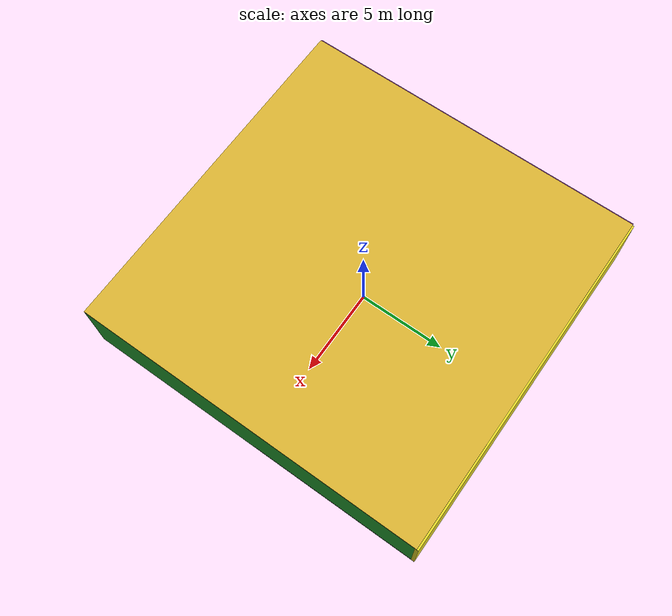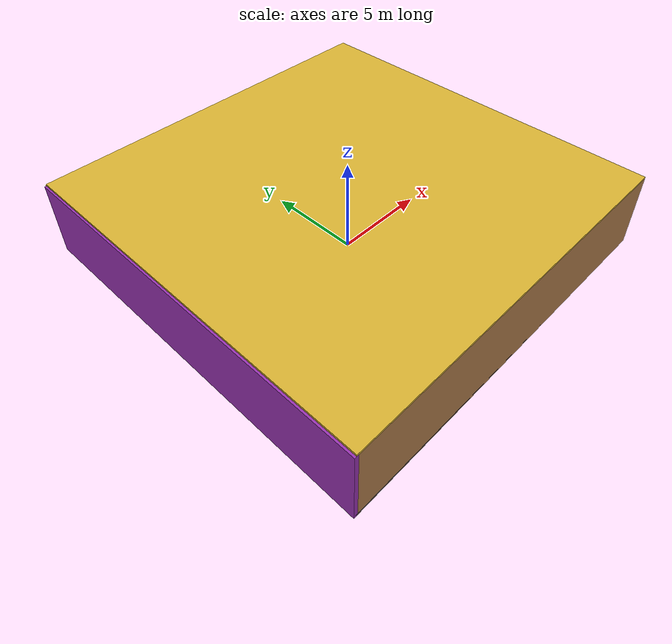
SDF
<sdf version="1.4">
 <world name="default">
  <physics type="ode">
   <max_step_size>0.001</max_step_size>
   <real_time_factor>1</real_time_factor>
   <real_time_update_rate>1000</real_time_update_rate>
   <gravity>0 0 -9.8</gravity>
  </physics>
  <scene><ambient>0.4 0.4 0.4 1</ambient><background>0.7 0.7 0.7 1</background><shadows>1</shadows></scene>
  <model name="Surrounding">
   <static>1</static>
   <link name="Ceiling">
    <collision name="Ceiling_Collision"><geometry><box><size>20 20 0.1</size></box></geometry></collision>
    <visual name="Ceiling_Visual">
     <geometry><box><size>20 20 0.1</size></box></geometry>
     <material>
      <script><uri>file://media/materials/scripts/gazebo.material</uri><name>Gazebo/Gold</name></script>
     </material>
    </visual>
    <pose>0 0 4.05 0 0 0</pose>
   </link>
   <link name="Wall_South">
    <collision name="Wall_South_Collision">
     <geometry><box><size>20 0 4</size></box></geometry>
     <pose>0 0 2 0 -0 0</pose>
    </collision>
    <visual name="Wall_South_Visual">
     <pose>0 0 2 0 -0 0</pose>
     <geometry><box><size>20 0 4</size></box></geometry>
     <material>
      <script><uri>file://media/materials/scripts/gazebo.material</uri><name>Gazebo/WoodPallet</name></script>
     </material>
    </visual>
    <velocity_decay><linear>0</linear><angular>0</angular></velocity_decay>
    <pose>0 -10 0 0 -0 0</pose>
   </link>
   <link name="Wall_East">
    <collision name="Wall_21_Collision">
     <geometry><box><size>20 0 4</size></box></geometry>
     <pose>0 0 2 0 -0 0</pose>
    </collision>
    <visual name="Wall_21_Visual">
     <pose>0 0 2 0 -0 0</pose>
     <geometry><box><size>20 0 4</size></box></geometry>
     <material>
      <script><uri>file://media/materials/scripts/gazebo.material</uri><name>Gazebo/Green</name></script>
     </material>
    </visual>
    <velocity_decay><linear>0</linear><angular>0</angular></velocity_decay>
    <pose>10 0 0 0 -0 1.5708</pose>
   </link>
   <link name="Wall_North">
    <collision name="Wall_22_Collision">
     <geometry><box><size>20 0.2 4</size></box></geometry>
     <pose>0 0 2 0 -0 0</pose>
    </collision>
    <visual name="Wall_22_Visual">
     <pose>0 0 2 0 -0 0</pose>
     <geometry><box><size>20 0.2 4</size></box></geometry>
     <material>
      <script><uri>file://media/materials/scripts/gazebo.material</uri><name>Gazebo/YellowGlow</name></script>
     </material>
    </visual>
    <velocity_decay><linear>0</linear><angular>0</angular></velocity_decay>
    <pose>0 10 0 0 -0 0</pose>
   </link>
   <link name="Wall_West">
    <collision name="Wall_23_Collision">
     <geometry><box><size>20 0.2 4</size></box></geometry>
     <pose>0 0 2 0 -0 0</pose>
    </collision>
    <visual name="Wall_23_Visual">
     <pose>0 0 2 0 -0 0</pose>
     <geometry><box><size>20 0.2 4</size></box></geometry>
     <material>
      <script><uri>file://media/materials/scripts/gazebo.material</uri><name>Gazebo/Purple</name></script>
     </material>
    </visual>
    <velocity_decay><linear>0</linear><angular>0</angular></velocity_decay>
    <pose>-10 0 0 0 0 -1.5708</pose>
   </link>
   <link name="Ground_link">
    <collision name="collision">
     <pose>0 0 .05 0 -0 0</pose>
     <geometry><box><size>20 20 0.1</size></box></geometry>
    </collision>
    <visual name="visual">
     <pose>0 0 .05 0 -0 0</pose>
     <geometry><box><size>20 20 0.1</size></box></geometry>
     <material>
      <script><uri>file://media/materials/scripts/gazebo.material</uri><name>Gazebo/DarkGrey</name></script>
     </material>
    </visual>
   </link>
   <static>1</static>
  </model>
  <spherical_coordinates>
   <surface_model>EARTH_WGS84</surface_model>
   <latitude_deg>0</latitude_deg>
   <longitude_deg>0</longitude_deg>
   <elevation>0</elevation>
   <heading_deg>0</heading_deg>
  </spherical_coordinates>
  <light name="lightball_0" type="diffuse">
   <diffuse>0.8 0.8 0.8 1</diffuse>
   <specular>0.2 0.2 0.2 1</specular>
   <attenuation>
    <range>100</range>
    <constant>0.7</constant>
    <linear>0.01</linear>
    <quadratic>0.001</quadratic>
   </attenuation>
   <direction>-0.5 0.1 -0.9</direction>
   <pose>-7.20538301464 0.0898618133684 1.19669848479 0 0 0</pose>
  </light>
  <include><uri>model://cabinet</uri><pose>-8.54243906462 -5.26584808952 0 0 0 1.73780274539</pose></include>
  <include>
   <uri>model://construction_cone</uri>
   <pose>-4.49592687381 -4.25097925857 0 0 0 1.72449922424</pose>
  </include>
  <include>
   <uri>model://robocup_3Dsim_goal</uri>
   <pose>-1.99032680327 2.45615102596 0 0 0 0.708911581226</pose>
  </include>
  <include>
   <uri>model://textured_shapes</uri>
   <pose>5.18905044151 -4.51109536182 0 0 0 0.74242433766</pose>
  </include>
  <include><uri>model://table</uri><pose>7.74601960241 -4.01491221714 0 0 0 0.197963119378</pose></include>
  <include>
   <uri>model://robocup_3Dsim_goal</uri>
   <pose>7.68177444436 4.87704255561 0 0 0 0.970139258645</pose>
  </include>
 </world>
</sdf>

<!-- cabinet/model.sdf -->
<sdf version="1.5">
  <model name="cabinet">
    <static>true</static>
    <link name="cabinet_bottom_plate">
      <inertial>
        <pose>0 0 -1 0 0 0</pose>
        <inertia>
          <ixx>2.050000</ixx>
          <ixy>0</ixy>
          <ixz>0</ixz>
          <iyy>2.050000</iyy>
          <iyz>0</iyz>
          <izz>2.050000</izz>
        </inertia>
        <mass>25.000000</mass>
      </inertial>
      <collision name="cabinet_bottom_plate_geom">
        <pose>0 0 0.010000 0 0 0</pose>
        <geometry>
          <box>
            <size>0.450000 0.450000 0.020000</size>
          </box>
        </geometry>
      </collision>
      <visual name="cabinet_bottom_plate_geom_visual">
        <pose>0 0 0.010000 0 0 0</pose>
        <geometry>
          <box>
            <size>0.450000 0.450000 0.020000</size>
          </box>
        </geometry>
        <material>
          <script>
            <uri>model://media/materials/scripts/gazebo.material</uri>
            <name>Gazebo/Wood</name>
          </script>
        </material>
      </visual>
      <collision name="cabinet_bottom_plate_geom_cabinet_back_plate">
        <pose>0.235000 0 0.510000 0 0 0</pose>
        <geometry>
          <box>
            <size>0.020000 0.450000 1.020000</size>
          </box>
        </geometry>
      </collision>
      <visual name="cabinet_bottom_plate_geom_cabinet_back_plate_visual">
        <pose>0.235000 0 0.510000 0 0 0</pose>
        <geometry>
          <box>
            <size>0.020000 0.450000 1.020000</size>
          </box>
        </geometry>
        <material>
          <script>
            <uri>model://media/materials/scripts/gazebo.material</uri>
            <name>Gazebo/Wood</name>
          </script>
        </material>
      </visual>
      <collision name="cabinet_bottom_plate_geom_cabinet_left_plate">
        <pose>0 0.235000 0.510000 0 0 0</pose>
        <geometry>
          <box>
            <size>0.450000 0.020000 1.020000</size>
          </box>
        </geometry>
      </collision>
      <visual name="cabinet_bottom_plate_geom_cabinet_left_plate_visual">
        <pose>0 0.235000 0.510000 0 0 0</pose>
        <geometry>
          <box>
            <size>0.450000 0.020000 1.020000</size>
          </box>
        </geometry>
        <material>
          <script>
            <uri>model://media/materials/scripts/gazebo.material</uri>
            <name>Gazebo/Wood</name>
          </script>
        </material>
      </visual>
      <collision name="cabinet_bottom_plate_geom_cabinet_middle_plate">
        <pose>0 0 0.510000 0 0 0</pose>
        <geometry>
          <box>
            <size>0.450000 0.450000 0.020000</size>
          </box>
        </geometry>
      </collision>
      <visual name="cabinet_bottom_plate_geom_cabinet_middle_plate_visual">
        <pose>0 0 0.510000 0 0 0</pose>
        <geometry>
          <box>
            <size>0.450000 0.450000 0.020000</size>
          </box>
        </geometry>
        <material>
          <script>
            <uri>model://media/materials/scripts/gazebo.material</uri>
            <name>Gazebo/Wood</name>
          </script>
        </material>
      </visual>
      <collision name="cabinet_bottom_plate_geom_cabinet_right_plate">
        <pose>0 -0.235000 0.510000 0 0 0</pose>
        <geometry>
          <box>
            <size>0.450000 0.020000 1.020000</size>
          </box>
        </geometry>
      </collision>
      <visual name="cabinet_bottom_plate_geom_cabinet_right_plate_visual">
        <pose>0 -0.235000 0.510000 0 0 0</pose>
        <geometry>
          <box>
            <size>0.450000 0.020000 1.020000</size>
          </box>
        </geometry>
        <material>
          <script>
            <uri>model://media/materials/scripts/gazebo.material</uri>
            <name>Gazebo/Wood</name>
          </script>
        </material>
      </visual>
      <collision name="cabinet_bottom_plate_geom_cabinet_top_plate">
        <pose>0 0 1.010000 0 0 0</pose>
        <geometry>
          <box>
            <size>0.450000 0.450000 0.020000</size>
          </box>
        </geometry>
      </collision>
      <visual name="cabinet_bottom_plate_geom_cabinet_top_plate_visual">
        <pose>0 0 1.010000 0 0 0</pose>
        <geometry>
          <box>
            <size>0.450000 0.450000 0.020000</size>
          </box>
        </geometry>
        <material>
          <script>
            <uri>model://media/materials/scripts/gazebo.material</uri>
            <name>Gazebo/Wood</name>
          </script>
        </material>
      </visual>
    </link>
  </model>
</sdf>

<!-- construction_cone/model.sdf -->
<sdf version="1.5">
  <model name="Construction Cone">
    <link name="link">
      <collision name="collision">
        <geometry>
          <mesh>
            <scale>10 10 10</scale>
            <uri>file://isr-testbed/construction_cone/meshes/construction_cone.dae</uri>
          </mesh>
        </geometry>
      </collision>
      <visual name="visual">
        <geometry>
          <mesh>
            <scale>10 10 10</scale>
            <uri>file://isr-testbed/construction_cone/meshes/construction_cone.dae</uri>
          </mesh>
        </geometry>
      </visual>
    </link>
  </model>
</sdf>

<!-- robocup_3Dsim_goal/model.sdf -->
<sdf version="1.5">
  <model name="robocup_3d_goal">
    <static>true</static>
    <link name="left_post">
      <pose>0 1.05 0.45 0 0 0</pose>
      <collision name="collision">
        <geometry>
          <cylinder>
            <radius>0.05</radius>
            <length>0.9</length>
          </cylinder>
        </geometry>
      </collision>
      <visual name="visual">
        <geometry>
          <cylinder>
            <radius>0.05</radius>
            <length>0.9</length>
          </cylinder>
        </geometry>
        <material>
          <script>
            <uri>file://media/materials/scripts/gazebo.material</uri>
            <name>Gazebo/ZincYellow</name>
          </script>
        </material>
      </visual>
    </link>
    <link name="left_support_horiz_lower">
      <pose>0.30 1.05 0.01 0 0 0</pose>
      <collision name="collision">
        <geometry>
          <box>
            <size>0.50 0.02 0.02</size>
          </box>
        </geometry>
      </collision>
      <visual name="visual">
        <geometry>
          <box>
            <size>0.50 0.02 0.02</size>
          </box>
        </geometry>
        <material>
          <script>
            <uri>file://media/materials/scripts/gazebo.material</uri>
            <name>Gazebo/White</name>
          </script>
        </material>
      </visual>
    </link>
    <link name="left_support_horiz_upper">
      <pose>0.30 1.05 0.79 0 0 0</pose>
      <collision name="collision">
        <geometry>
          <box>
            <size>0.50 0.02 0.02</size>
          </box>
        </geometry>
      </collision>
      <visual name="visual">
        <geometry>
          <box>
            <size>0.50 0.02 0.02</size>
          </box>
        </geometry>
        <material>
          <script>
            <uri>file://media/materials/scripts/gazebo.material</uri>
            <name>Gazebo/White</name>
          </script>
        </material>
      </visual>
    </link>
    <link name="left_support_vertical">
      <pose>0.56 1.05 0.4 0 1.5708 0</pose>
      <collision name="collision">
        <geometry>
          <box>
            <size>0.80 0.02 0.02</size>
          </box>
        </geometry>
      </collision>
      <visual name="visual">
        <geometry>
          <box>
            <size>0.80 0.02 0.02</size>
          </box>
        </geometry>
        <material>
          <script>
            <uri>file://media/materials/scripts/gazebo.material</uri>
            <name>Gazebo/White</name>
          </script>
        </material>
      </visual>
    </link>
    <link name="right_support_horiz_lower">
      <pose>0.30 -1.05 0.01 0 0 0</pose>
      <collision name="collision">
        <geometry>
          <box>
            <size>0.50 0.02 0.02</size>
          </box>
        </geometry>
      </collision>
      <visual name="visual">
        <geometry>
          <box>
            <size>0.50 0.02 0.02</size>
          </box>
        </geometry>
        <material>
          <script>
            <uri>file://media/materials/scripts/gazebo.material</uri>
            <name>Gazebo/White</name>
          </script>
        </material>
      </visual>
    </link>
    <link name="right_support_horiz_upper">
      <pose>0.30 -1.05 0.79 0 0 0</pose>
      <collision name="collision">
        <geometry>
          <box>
            <size>0.50 0.02 0.02</size>
          </box>
        </geometry>
      </collision>
      <visual name="visual">
        <geometry>
          <box>
            <size>0.50 0.02 0.02</size>
          </box>
        </geometry>
        <material>
          <script>
            <uri>file://media/materials/scripts/gazebo.material</uri>
            <name>Gazebo/White</name>
          </script>
        </material>
      </visual>
    </link>
    <link name="right_support_vertical">
      <pose>0.56 -1.05 0.4 0 1.5708 0</pose>
      <collision name="collision">
        <geometry>
          <box>
            <size>0.80 0.02 0.02</size>
          </box>
        </geometry>
      </collision>
      <visual name="visual">
        <geometry>
          <box>
            <size>0.80 0.02 0.02</size>
          </box>
        </geometry>
        <material>
          <script>
            <uri>file://media/materials/scripts/gazebo.material</uri>
            <name>Gazebo/White</name>
          </script>
        </material>
      </visual>
    </link>
    <link name="center_support_horiz_lower">
      <pose>0.56 0 0.01 0 1.5708 0</pose>
      <collision name="collision">
        <geometry>
          <box>
            <size>0.02 2.08 0.02</size>
          </box>
        </geometry>
      </collision>
      <visual name="visual">
        <geometry>
          <box>
            <size>0.02 2.08 0.02</size>
          </box>
        </geometry>
        <material>
          <script>
            <uri>file://media/materials/scripts/gazebo.material</uri>
            <name>Gazebo/White</name>
          </script>
        </material>
      </visual>
    </link>
    <link name="center_support_horiz_upper">
      <pose>0.56 0 0.79 0 1.5708 0</pose>
      <collision name="collision">
        <geometry>
          <box>
            <size>0.02 2.08 0.02</size>
          </box>
        </geometry>
      </collision>
      <visual name="visual">
        <geometry>
          <box>
            <size>0.02 2.08 0.02</size>
          </box>
        </geometry>
        <material>
          <script>
            <uri>file://media/materials/scripts/gazebo.material</uri>
            <name>Gazebo/White</name>
          </script>
        </material>
      </visual>
    </link>
    <link name="right_post">
      <pose>0 -1.05 0.45 0 0 0</pose>
      <collision name="collision">
        <geometry>
          <cylinder>
            <radius>0.05</radius>
            <length>0.9</length>
          </cylinder>
        </geometry>
      </collision>
      <visual name="visual">
        <geometry>
          <cylinder>
            <radius>0.05</radius>
            <length>0.9</length>
          </cylinder>
        </geometry>
        <material>
          <script>
            <uri>file://media/materials/scripts/gazebo.material</uri>
            <name>Gazebo/ZincYellow</name>
          </script>
        </material>
      </visual>
    </link>
    <link name="crossbar">
      <pose>0 0 0.85 1.57 1.57 0</pose>
      <collision name="collision">
        <geometry>
          <cylinder>
            <radius>0.05</radius>
            <length>2.0</length>
          </cylinder>
        </geometry>
      </collision>
      <visual name="visual">
        <geometry>
          <cylinder>
            <radius>0.05</radius>
            <length>2.0</length>
          </cylinder>
        </geometry>
        <material>
          <script>
            <uri>file://media/materials/scripts/gazebo.material</uri>
            <name>Gazebo/ZincYellow</name>
          </script>
        </material>
      </visual>
    </link>
    <link name="center_net">
      <pose>0.56 0 0.40 0 0 0</pose>
      <collision name="collision">
        <geometry>
          <box>
            <size>0.01 2.1 0.80</size>
          </box>
        </geometry>
      </collision>
      <visual name="visual">
        <geometry>
          <box>
            <size>0.01 2.1 0.80</size>
          </box>
        </geometry>
        <material>
          <script>
            <uri>model://../model_source/models/robocup09_spl_field/materials/scripts/</uri>
            <uri>model://../model_source/models/robocup09_spl_field/materials/textures/</uri>
            <name>RoboCup/Net</name>
          </script>
        </material>
      </visual>
    </link>
    <link name="left_net">
      <pose>0.30 1.05 0.40 0 0 0</pose>
      <collision name="collision">
        <geometry>
          <box>
            <size>0.50 0.01 0.76</size>
          </box>
        </geometry>
      </collision>
      <visual name="visual">
        <geometry>
          <box>
            <size>0.50 0.01 0.76</size>
          </box>
        </geometry>
        <material>
          <script>
            <uri>model://../model_source/models/robocup09_spl_field/materials/scripts/</uri>
            <uri>model://../model_source/models/robocup09_spl_field/materials/textures/</uri>
            <name>RoboCup/Net</name>
          </script>
        </material>
      </visual>
    </link>
    <link name="right_net">
      <pose>0.30 -1.05 0.40 0 0 0</pose>
      <collision name="collision">
        <geometry>
          <box>
            <size>0.50 0.01 0.76</size>
          </box>
        </geometry>
      </collision>
      <visual name="visual">
        <geometry>
          <box>
            <size>0.50 0.01 0.76</size>
          </box>
        </geometry>
        <material>
          <script>
            <uri>model://../model_source/models/robocup09_spl_field/materials/scripts/</uri>
            <uri>model://../model_source/models/robocup09_spl_field/materials/textures/</uri>
            <name>RoboCup/Net</name>
          </script>
        </material>
      </visual>
    </link>
  </model>
</sdf>

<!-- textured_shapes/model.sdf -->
<sdf version="1.6">
  <model name="textured_shapes">
    <pose>0 0 0.5 0 0 0</pose>
    <link name="box">
      <pose>0 -1.5 0 0 0 0</pose>
      <collision name="collision">
        <geometry>
          <box>
            <size>1 1 1</size>
          </box>
        </geometry>
      </collision>
      <visual name="visual">
        <geometry>
          <box>
            <size>1 1 1</size>
          </box>
        </geometry>
        <material>
          <script>
            <uri>model://../model_source/models/textured_shapes/materials/scripts</uri>
            <uri>model://../model_source/models/textured_shapes/materials/textures</uri>
            <name>TexturedShape/Squares</name>
          </script>
        </material>
      </visual>
    </link>
    <link name="sphere">
      <collision name="collision">
        <geometry>
          <sphere>
            <radius>0.5</radius>
          </sphere>
        </geometry>
      </collision>
      <visual name="visual">
        <geometry>
          <sphere>
            <radius>0.5</radius>
          </sphere>
        </geometry>
        <material>
          <script>
            <uri>model://../model_source/models/textured_shapes/materials/scripts</uri>
            <uri>model://../model_source/models/textured_shapes/materials/textures</uri>
            <name>TexturedShape/Squares</name>
          </script>
        </material>
      </visual>
    </link>
    <link name="cylinder">
      <pose>0 1.5 0 0 0 0</pose>
      <collision name="collision">
        <geometry>
          <cylinder>
            <radius>0.5</radius>
            <length>1</length>
          </cylinder>
        </geometry>
      </collision>
      <visual name="visual">
        <geometry>
          <cylinder>
            <radius>0.5</radius>
            <length>1</length>
          </cylinder>
        </geometry>
        <material>
          <script>
            <uri>model://../model_source/models/textured_shapes/materials/scripts</uri>
            <uri>model://../model_source/models/textured_shapes/materials/textures</uri>
            <name>TexturedShape/Squares</name>
          </script>
        </material>
      </visual>
    </link>
  </model>
</sdf>

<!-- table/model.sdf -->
<sdf version="1.5">
  <model name="table">
    <static>true</static>
    <link name="link">
      <collision name="surface">
        <pose>0 0 1.0 0 0 0</pose>
        <geometry>
          <box>
            <size>1.5 0.8 0.03</size>
          </box>
        </geometry>
        <surface>
          <friction>
            <ode>
              <mu>0.6</mu>
              <mu2>0.6</mu2>
            </ode>
          </friction>
        </surface>
      </collision>
      <visual name="visual1">
        <pose>0 0 1.0 0 0 0</pose>
        <geometry>
          <box>
            <size>1.5 0.8 0.03</size>
          </box>
        </geometry>
        <material>
          <script>
            <uri>model://media/materials/scripts/gazebo.material</uri>
            <name>Gazebo/Wood</name>
          </script>
        </material>
      </visual>
      <collision name="front_left_leg">
        <pose>0.68 0.38 0.5 0 0 0</pose>
        <geometry>
          <cylinder>
            <radius>0.02</radius>
            <length>1.0</length>
          </cylinder>
        </geometry>
      </collision>
      <visual name="front_left_leg">
        <pose>0.68 0.38 0.5 0 0 0</pose>
        <geometry>
          <cylinder>
            <radius>0.02</radius>
            <length>1.0</length>
          </cylinder>
        </geometry>
        <material>
          <script>
            <uri>model://media/materials/scripts/gazebo.material</uri>
            <name>Gazebo/Grey</name>
          </script>
        </material>
      </visual>
      <collision name="front_right_leg">
        <pose>0.68 -0.38 0.5 0 0 0</pose>
        <geometry>
          <cylinder>
            <radius>0.02</radius>
            <length>1.0</length>
          </cylinder>
        </geometry>
      </collision>
      <visual name="front_right_leg">
        <pose>0.68 -0.38 0.5 0 0 0</pose>
        <geometry>
          <cylinder>
            <radius>0.02</radius>
            <length>1.0</length>
          </cylinder>
        </geometry>
        <material>
          <script>
            <uri>model://media/materials/scripts/gazebo.material</uri>
            <name>Gazebo/Grey</name>
          </script>
        </material>
      </visual>
      <collision name="back_right_leg">
        <pose>-0.68 -0.38 0.5 0 0 0</pose>
        <geometry>
          <cylinder>
            <radius>0.02</radius>
            <length>1.0</length>
          </cylinder>
        </geometry>
      </collision>
      <visual name="back_right_leg">
        <pose>-0.68 -0.38 0.5 0 0 0</pose>
        <geometry>
          <cylinder>
            <radius>0.02</radius>
            <length>1.0</length>
          </cylinder>
        </geometry>
        <material>
          <script>
            <uri>model://media/materials/scripts/gazebo.material</uri>
            <name>Gazebo/Grey</name>
          </script>
        </material>
      </visual>
      <collision name="back_left_leg">
        <pose>-0.68 0.38 0.5 0 0 0</pose>
        <geometry>
          <cylinder>
            <radius>0.02</radius>
            <length>1.0</length>
          </cylinder>
        </geometry>
      </collision>
      <visual name="back_left_leg">
        <pose>-0.68 0.38 0.5 0 0 0</pose>
        <geometry>
          <cylinder>
            <radius>0.02</radius>
            <length>1.0</length>
          </cylinder>
        </geometry>
        <material>
          <script>
            <uri>model://media/materials/scripts/gazebo.material</uri>
            <name>Gazebo/Grey</name>
          </script>
        </material>
      </visual>
    </link>
  </model>
</sdf>
